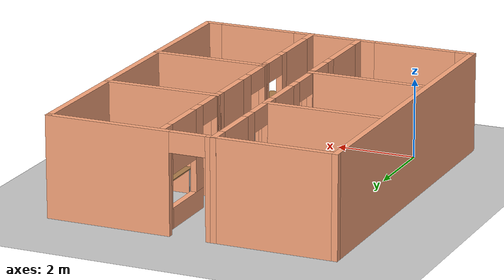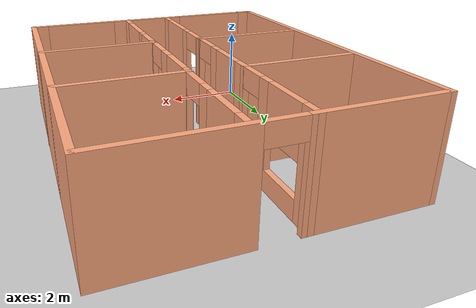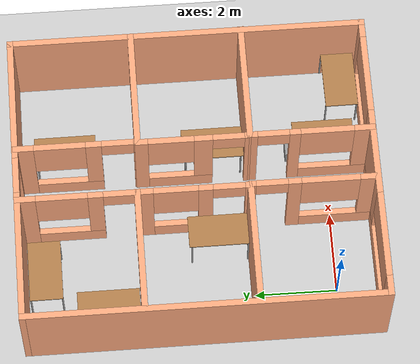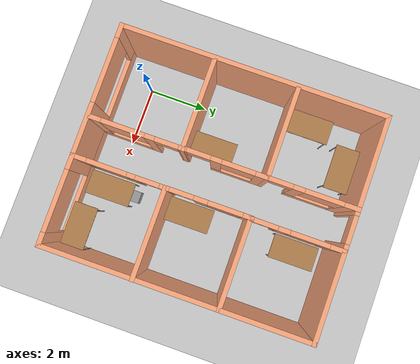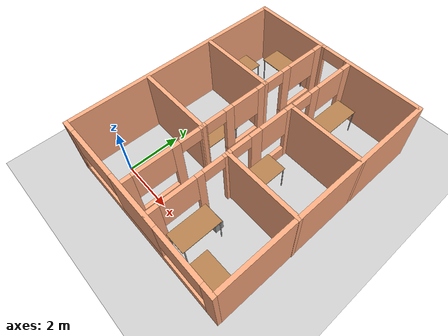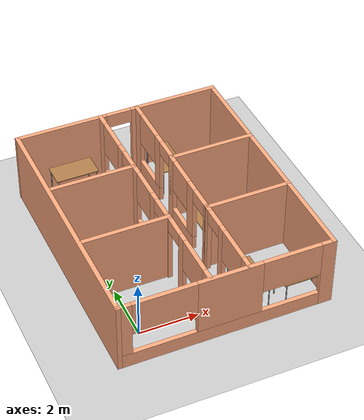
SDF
<sdf version="1.7">
 <world name="default">
  <light name="sun" type="directional">
   <pose>0 0 10 0 -0 0</pose>
   <diffuse>0.8 0.8 0.8 1</diffuse>
   <specular>0.2 0.2 0.2 1</specular>
   <attenuation>
    <range>1000</range>
    <constant>0.9</constant>
    <linear>0.01</linear>
    <quadratic>0.001</quadratic>
   </attenuation>
   <direction>-0.5 0.1 -0.9</direction>
   <spot><inner_angle>0</inner_angle><outer_angle>0</outer_angle><falloff>0</falloff></spot>
  </light>
  <model name="ground_plane">
   <static>1</static>
   <link name="link">
    <collision name="collision">
     <geometry><plane><normal>0 0 1</normal><size>100 100</size></plane></geometry>
     <surface><friction><ode><mu>100</mu><mu2>50</mu2></ode></friction></surface>
    </collision>
    <visual name="visual">
     <cast_shadows>0</cast_shadows>
     <geometry><plane><normal>0 0 1</normal><size>100 100</size></plane></geometry>
     <material>
      <script><uri>file://media/materials/scripts/gazebo.material</uri><name>Gazebo/Grey</name></script>
     </material>
    </visual>
   </link>
  </model>
  <gravity>0 0 -9.8</gravity>
  <magnetic_field>6e-06 2.3e-05 -4.2e-05</magnetic_field>
  <atmosphere type="adiabatic"/>
  <physics type="ode">
   <max_step_size>0.001</max_step_size>
   <real_time_factor>1</real_time_factor>
   <real_time_update_rate>1000</real_time_update_rate>
  </physics>
  <scene><ambient>0.4 0.4 0.4 1</ambient><background>0.7 0.7 0.7 1</background><shadows>1</shadows></scene>
  <audio><device>default</device></audio>
  <spherical_coordinates>
   <surface_model>EARTH_WGS84</surface_model>
   <latitude_deg>0</latitude_deg>
   <longitude_deg>0</longitude_deg>
   <elevation>0</elevation>
   <heading_deg>0</heading_deg>
  </spherical_coordinates>
  <model name="map_50703">
   <pose>2.46963 3.26949 0 0 0 -1.56915</pose>
   <link name="Wall_12">
    <collision name="Wall_12_Collision">
     <geometry><box><size>8.75 0.15 2.5</size></box></geometry>
     <pose>0 0 1.25 0 -0 0</pose>
    </collision>
    <visual name="Wall_12_Visual">
     <pose>0 0 1.25 0 -0 0</pose>
     <geometry><box><size>8.75 0.15 2.5</size></box></geometry>
     <material>
      <script><uri>file://media/materials/scripts/gazebo.material</uri><name>Gazebo/Grey</name></script>
      <ambient>1 0.666667 0.498039 1</ambient>
     </material>
     <meta><layer>0</layer></meta>
    </visual>
    <pose>0.000429 3.54473 0 0 -0 0</pose>
   </link>
   <link name="Wall_14">
    <pose>4.30043 -0.00527 0 0 -0 -1.5708</pose>
    <visual name="Wall_14_Visual_0">
     <pose>-3.38322 0 1.25 0 -0 0</pose>
     <geometry><box><size>0.483567 0.15 2.5</size></box></geometry>
     <material>
      <script><uri>file://media/materials/scripts/gazebo.material</uri><name>Gazebo/Grey</name></script>
      <ambient>1 0.666667 0.498039 1</ambient>
     </material>
     <meta><layer>0</layer></meta>
    </visual>
    <collision name="Wall_14_Collision_0">
     <geometry><box><size>0.483567 0.15 2.5</size></box></geometry>
     <pose>-3.38322 0 1.25 0 -0 0</pose>
    </collision>
    <visual name="Wall_14_Visual_1">
     <pose>0.241783 0 0.25 0 -0 0</pose>
     <geometry><box><size>6.76643 0.15 0.5</size></box></geometry>
     <material>
      <script><uri>file://media/materials/scripts/gazebo.material</uri><name>Gazebo/Grey</name></script>
      <ambient>1 0.666667 0.498039 1</ambient>
     </material>
     <meta><layer>0</layer></meta>
    </visual>
    <collision name="Wall_14_Collision_1">
     <geometry><box><size>6.76643 0.15 0.5</size></box></geometry>
     <pose>0.241783 0 0.25 0 -0 0</pose>
    </collision>
    <visual name="Wall_14_Visual_2">
     <pose>-0.076209 0 1.5 0 -0 0</pose>
     <geometry><box><size>2.16534 0.15 2</size></box></geometry>
     <material>
      <script><uri>file://media/materials/scripts/gazebo.material</uri><name>Gazebo/Grey</name></script>
      <ambient>1 0.666667 0.498039 1</ambient>
     </material>
     <meta><layer>0</layer></meta>
    </visual>
    <collision name="Wall_14_Collision_2">
     <geometry><box><size>2.16534 0.15 2</size></box></geometry>
     <pose>-0.076209 0 1.5 0 -0 0</pose>
    </collision>
    <visual name="Wall_14_Visual_3">
     <pose>3.37611 0 1.5 0 -0 0</pose>
     <geometry><box><size>0.49778 0.15 2</size></box></geometry>
     <material>
      <script><uri>file://media/materials/scripts/gazebo.material</uri><name>Gazebo/Grey</name></script>
      <ambient>1 0.666667 0.498039 1</ambient>
     </material>
     <meta><layer>0</layer></meta>
    </visual>
    <collision name="Wall_14_Collision_3">
     <geometry><box><size>0.49778 0.15 2</size></box></geometry>
     <pose>3.37611 0 1.5 0 -0 0</pose>
    </collision>
    <visual name="Wall_14_Visual_4">
     <pose>-2.15016 0 1.9 0 -0 0</pose>
     <geometry><box><size>1.98255 0.15 1.2</size></box></geometry>
     <material>
      <script><uri>file://media/materials/scripts/gazebo.material</uri><name>Gazebo/Grey</name></script>
      <ambient>1 0.666667 0.498039 1</ambient>
     </material>
     <meta><layer>0</layer></meta>
    </visual>
    <collision name="Wall_14_Collision_4">
     <geometry><box><size>1.98255 0.15 1.2</size></box></geometry>
     <pose>-2.15016 0 1.9 0 -0 0</pose>
    </collision>
    <visual name="Wall_14_Visual_5">
     <pose>2.06684 0 1.9 0 -0 0</pose>
     <geometry><box><size>2.12076 0.15 1.2</size></box></geometry>
     <material>
      <script><uri>file://media/materials/scripts/gazebo.material</uri><name>Gazebo/Grey</name></script>
      <ambient>1 0.666667 0.498039 1</ambient>
     </material>
     <meta><layer>0</layer></meta>
    </visual>
    <collision name="Wall_14_Collision_5">
     <geometry><box><size>2.12076 0.15 1.2</size></box></geometry>
     <pose>2.06684 0 1.9 0 -0 0</pose>
    </collision>
   </link>
   <link name="Wall_16">
    <collision name="Wall_16_Collision">
     <geometry><box><size>8.75 0.15 2.5</size></box></geometry>
     <pose>0 0 1.25 0 -0 0</pose>
    </collision>
    <visual name="Wall_16_Visual">
     <pose>0 0 1.25 0 -0 0</pose>
     <geometry><box><size>8.75 0.15 2.5</size></box></geometry>
     <material>
      <script><uri>file://media/materials/scripts/gazebo.material</uri><name>Gazebo/Grey</name></script>
      <ambient>1 0.666667 0.498039 1</ambient>
     </material>
     <meta><layer>0</layer></meta>
    </visual>
    <pose>0.000429 -3.55527 0 0 -0 3.14159</pose>
   </link>
   <link name="Wall_17">
    <pose>-4.29957 -0.00527 0 0 -0 1.5708</pose>
    <visual name="Wall_17_Visual_0">
     <pose>-2.01405 0 1.25 0 -0 0</pose>
     <geometry><box><size>3.22191 0.15 2.5</size></box></geometry>
     <material>
      <script><uri>file://media/materials/scripts/gazebo.material</uri><name>Gazebo/Grey</name></script>
      <ambient>1 0.666667 0.498039 1</ambient>
     </material>
     <meta><layer>0</layer></meta>
    </visual>
    <collision name="Wall_17_Collision_0">
     <geometry><box><size>3.22191 0.15 2.5</size></box></geometry>
     <pose>-2.01405 0 1.25 0 -0 0</pose>
    </collision>
    <visual name="Wall_17_Visual_1">
     <pose>2.06095 0 1.25 0 -0 0</pose>
     <geometry><box><size>3.12809 0.15 2.5</size></box></geometry>
     <material>
      <script><uri>file://media/materials/scripts/gazebo.material</uri><name>Gazebo/Grey</name></script>
      <ambient>1 0.666667 0.498039 1</ambient>
     </material>
     <meta><layer>0</layer></meta>
    </visual>
    <collision name="Wall_17_Collision_1">
     <geometry><box><size>3.12809 0.15 2.5</size></box></geometry>
     <pose>2.06095 0 1.25 0 -0 0</pose>
    </collision>
    <visual name="Wall_17_Visual_2">
     <pose>0.046906 0 2.25 0 -0 0</pose>
     <geometry><box><size>0.9 0.15 0.5</size></box></geometry>
     <material>
      <script><uri>file://media/materials/scripts/gazebo.material</uri><name>Gazebo/Grey</name></script>
      <ambient>1 0.666667 0.498039 1</ambient>
     </material>
     <meta><layer>0</layer></meta>
    </visual>
    <collision name="Wall_17_Collision_2">
     <geometry><box><size>0.9 0.15 0.5</size></box></geometry>
     <pose>0.046906 0 2.25 0 -0 0</pose>
    </collision>
   </link>
   <link name="Wall_27">
    <collision name="Wall_27_Collision">
     <geometry><box><size>3 0.15 2.5</size></box></geometry>
     <pose>0 0 1.25 0 -0 0</pose>
    </collision>
    <visual name="Wall_27_Visual">
     <pose>0 0 1.25 0 -0 0</pose>
     <geometry><box><size>3 0.15 2.5</size></box></geometry>
     <material>
      <script><uri>file://media/materials/scripts/gazebo.material</uri><name>Gazebo/Grey</name></script>
      <ambient>1 0.666667 0.498039 1</ambient>
     </material>
     <meta><layer>0</layer></meta>
    </visual>
    <pose>-1.35854 2.12027 0 0 -0 -1.5708</pose>
   </link>
   <link name="Wall_28">
    <pose>-0.058544 0.69527 0 0 -0 0</pose>
    <visual name="Wall_28_Visual_0">
     <pose>-1.21382 0 1.25 0 -0 0</pose>
     <geometry><box><size>0.322353 0.15 2.5</size></box></geometry>
     <material>
      <script><uri>file://media/materials/scripts/gazebo.material</uri><name>Gazebo/Grey</name></script>
      <ambient>1 0.666667 0.498039 1</ambient>
     </material>
     <meta><layer>0</layer></meta>
    </visual>
    <collision name="Wall_28_Collision_0">
     <geometry><box><size>0.322353 0.15 2.5</size></box></geometry>
     <pose>-1.21382 0 1.25 0 -0 0</pose>
    </collision>
    <visual name="Wall_28_Visual_1">
     <pose>1.32495 0 1.25 0 -0 0</pose>
     <geometry><box><size>0.100106 0.15 2.5</size></box></geometry>
     <material>
      <script><uri>file://media/materials/scripts/gazebo.material</uri><name>Gazebo/Grey</name></script>
      <ambient>1 0.666667 0.498039 1</ambient>
     </material>
     <meta><layer>0</layer></meta>
    </visual>
    <collision name="Wall_28_Collision_1">
     <geometry><box><size>0.100106 0.15 2.5</size></box></geometry>
     <pose>1.32495 0 1.25 0 -0 0</pose>
    </collision>
    <visual name="Wall_28_Visual_2">
     <pose>-0.273877 0 0.25 0 -0 0</pose>
     <geometry><box><size>1.55754 0.15 0.5</size></box></geometry>
     <material>
      <script><uri>file://media/materials/scripts/gazebo.material</uri><name>Gazebo/Grey</name></script>
      <ambient>1 0.666667 0.498039 1</ambient>
     </material>
     <meta><layer>0</layer></meta>
    </visual>
    <collision name="Wall_28_Collision_2">
     <geometry><box><size>1.55754 0.15 0.5</size></box></geometry>
     <pose>-0.273877 0 0.25 0 -0 0</pose>
    </collision>
    <visual name="Wall_28_Visual_3">
     <pose>0.280863 0 1.5 0 -0 0</pose>
     <geometry><box><size>0.448061 0.15 2</size></box></geometry>
     <material>
      <script><uri>file://media/materials/scripts/gazebo.material</uri><name>Gazebo/Grey</name></script>
      <ambient>1 0.666667 0.498039 1</ambient>
     </material>
     <meta><layer>0</layer></meta>
    </visual>
    <collision name="Wall_28_Collision_3">
     <geometry><box><size>0.448061 0.15 2</size></box></geometry>
     <pose>0.280863 0 1.5 0 -0 0</pose>
    </collision>
    <visual name="Wall_28_Visual_4">
     <pose>-0.497907 0 1.9 0 -0 0</pose>
     <geometry><box><size>1.10948 0.15 1.2</size></box></geometry>
     <material>
      <script><uri>file://media/materials/scripts/gazebo.material</uri><name>Gazebo/Grey</name></script>
      <ambient>1 0.666667 0.498039 1</ambient>
     </material>
     <meta><layer>0</layer></meta>
    </visual>
    <collision name="Wall_28_Collision_4">
     <geometry><box><size>1.10948 0.15 1.2</size></box></geometry>
     <pose>-0.497907 0 1.9 0 -0 0</pose>
    </collision>
    <visual name="Wall_28_Visual_5">
     <pose>0.889894 0 2.25 0 -0 0</pose>
     <geometry><box><size>0.77 0.15 0.5</size></box></geometry>
     <material>
      <script><uri>file://media/materials/scripts/gazebo.material</uri><name>Gazebo/Grey</name></script>
      <ambient>1 0.666667 0.498039 1</ambient>
     </material>
     <meta><layer>0</layer></meta>
    </visual>
    <collision name="Wall_28_Collision_5">
     <geometry><box><size>0.77 0.15 0.5</size></box></geometry>
     <pose>0.889894 0 2.25 0 -0 0</pose>
    </collision>
   </link>
   <link name="Wall_33">
    <collision name="Wall_33_Collision">
     <geometry><box><size>3 0.15 2.5</size></box></geometry>
     <pose>0 0 1.25 0 -0 0</pose>
    </collision>
    <visual name="Wall_33_Visual">
     <pose>0 0 1.25 0 -0 0</pose>
     <geometry><box><size>3 0.15 2.5</size></box></geometry>
     <material>
      <script><uri>file://media/materials/scripts/gazebo.material</uri><name>Gazebo/Grey</name></script>
      <ambient>1 0.666667 0.498039 1</ambient>
     </material>
     <meta><layer>0</layer></meta>
    </visual>
    <pose>-1.44248 -2.02407 0 0 -0 -1.5708</pose>
   </link>
   <link name="Wall_35">
    <pose>-0.14248 -0.599073 0 0 -0 0</pose>
    <visual name="Wall_35_Visual_0">
     <pose>-1.14883 0 1.25 0 -0 0</pose>
     <geometry><box><size>0.452336 0.15 2.5</size></box></geometry>
     <material>
      <script><uri>file://media/materials/scripts/gazebo.material</uri><name>Gazebo/Grey</name></script>
      <ambient>1 0.666667 0.498039 1</ambient>
     </material>
     <meta><layer>0</layer></meta>
    </visual>
    <collision name="Wall_35_Collision_0">
     <geometry><box><size>0.452336 0.15 2.5</size></box></geometry>
     <pose>-1.14883 0 1.25 0 -0 0</pose>
    </collision>
    <visual name="Wall_35_Visual_1">
     <pose>1.32379 0 1.25 0 -0 0</pose>
     <geometry><box><size>0.102421 0.15 2.5</size></box></geometry>
     <material>
      <script><uri>file://media/materials/scripts/gazebo.material</uri><name>Gazebo/Grey</name></script>
      <ambient>1 0.666667 0.498039 1</ambient>
     </material>
     <meta><layer>0</layer></meta>
    </visual>
    <collision name="Wall_35_Collision_1">
     <geometry><box><size>0.102421 0.15 2.5</size></box></geometry>
     <pose>1.32379 0 1.25 0 -0 0</pose>
    </collision>
    <visual name="Wall_35_Visual_2">
     <pose>-0.210042 0 0.25 0 -0 0</pose>
     <geometry><box><size>1.42524 0.15 0.5</size></box></geometry>
     <material>
      <script><uri>file://media/materials/scripts/gazebo.material</uri><name>Gazebo/Grey</name></script>
      <ambient>1 0.666667 0.498039 1</ambient>
     </material>
     <meta><layer>0</layer></meta>
    </visual>
    <collision name="Wall_35_Collision_2">
     <geometry><box><size>1.42524 0.15 0.5</size></box></geometry>
     <pose>-0.210042 0 0.25 0 -0 0</pose>
    </collision>
    <visual name="Wall_35_Visual_3">
     <pose>0.32915 0 1.5 0 -0 0</pose>
     <geometry><box><size>0.346859 0.15 2</size></box></geometry>
     <material>
      <script><uri>file://media/materials/scripts/gazebo.material</uri><name>Gazebo/Grey</name></script>
      <ambient>1 0.666667 0.498039 1</ambient>
     </material>
     <meta><layer>0</layer></meta>
    </visual>
    <collision name="Wall_35_Collision_3">
     <geometry><box><size>0.346859 0.15 2</size></box></geometry>
     <pose>0.32915 0 1.5 0 -0 0</pose>
    </collision>
    <visual name="Wall_35_Visual_4">
     <pose>-0.383472 0 1.9 0 -0 0</pose>
     <geometry><box><size>1.07838 0.15 1.2</size></box></geometry>
     <material>
      <script><uri>file://media/materials/scripts/gazebo.material</uri><name>Gazebo/Grey</name></script>
      <ambient>1 0.666667 0.498039 1</ambient>
     </material>
     <meta><layer>0</layer></meta>
    </visual>
    <collision name="Wall_35_Collision_4">
     <geometry><box><size>1.07838 0.15 1.2</size></box></geometry>
     <pose>-0.383472 0 1.9 0 -0 0</pose>
    </collision>
    <visual name="Wall_35_Visual_5">
     <pose>0.887579 0 2.25 0 -0 0</pose>
     <geometry><box><size>0.77 0.15 0.5</size></box></geometry>
     <material>
      <script><uri>file://media/materials/scripts/gazebo.material</uri><name>Gazebo/Grey</name></script>
      <ambient>1 0.666667 0.498039 1</ambient>
     </material>
     <meta><layer>0</layer></meta>
    </visual>
    <collision name="Wall_35_Collision_5">
     <geometry><box><size>0.77 0.15 0.5</size></box></geometry>
     <pose>0.887579 0 2.25 0 -0 0</pose>
    </collision>
   </link>
   <link name="Wall_41">
    <pose>-2.87543 -0.604096 0 0 -0 0</pose>
    <visual name="Wall_41_Visual_0">
     <pose>-1.24449 0 1.25 0 -0 0</pose>
     <geometry><box><size>0.511019 0.15 2.5</size></box></geometry>
     <material>
      <script><uri>file://media/materials/scripts/gazebo.material</uri><name>Gazebo/Grey</name></script>
      <ambient>1 0.666667 0.498039 1</ambient>
     </material>
     <meta><layer>0</layer></meta>
    </visual>
    <collision name="Wall_41_Collision_0">
     <geometry><box><size>0.511019 0.15 2.5</size></box></geometry>
     <pose>-1.24449 0 1.25 0 -0 0</pose>
    </collision>
    <visual name="Wall_41_Visual_1">
     <pose>1.44464 0 1.25 0 -0 0</pose>
     <geometry><box><size>0.110721 0.15 2.5</size></box></geometry>
     <material>
      <script><uri>file://media/materials/scripts/gazebo.material</uri><name>Gazebo/Grey</name></script>
      <ambient>1 0.666667 0.498039 1</ambient>
     </material>
     <meta><layer>0</layer></meta>
    </visual>
    <collision name="Wall_41_Collision_1">
     <geometry><box><size>0.110721 0.15 2.5</size></box></geometry>
     <pose>1.44464 0 1.25 0 -0 0</pose>
    </collision>
    <visual name="Wall_41_Visual_2">
     <pose>-0.184851 0 0.25 0 -0 0</pose>
     <geometry><box><size>1.60826 0.15 0.5</size></box></geometry>
     <material>
      <script><uri>file://media/materials/scripts/gazebo.material</uri><name>Gazebo/Grey</name></script>
      <ambient>1 0.666667 0.498039 1</ambient>
     </material>
     <meta><layer>0</layer></meta>
    </visual>
    <collision name="Wall_41_Collision_2">
     <geometry><box><size>1.60826 0.15 0.5</size></box></geometry>
     <pose>-0.184851 0 0.25 0 -0 0</pose>
    </collision>
    <visual name="Wall_41_Visual_3">
     <pose>0.435017 0 1.5 0 -0 0</pose>
     <geometry><box><size>0.368524 0.15 2</size></box></geometry>
     <material>
      <script><uri>file://media/materials/scripts/gazebo.material</uri><name>Gazebo/Grey</name></script>
      <ambient>1 0.666667 0.498039 1</ambient>
     </material>
     <meta><layer>0</layer></meta>
    </visual>
    <collision name="Wall_41_Collision_3">
     <geometry><box><size>0.368524 0.15 2</size></box></geometry>
     <pose>0.435017 0 1.5 0 -0 0</pose>
    </collision>
    <visual name="Wall_41_Visual_4">
     <pose>-0.369113 0 1.9 0 -0 0</pose>
     <geometry><box><size>1.23974 0.15 1.2</size></box></geometry>
     <material>
      <script><uri>file://media/materials/scripts/gazebo.material</uri><name>Gazebo/Grey</name></script>
      <ambient>1 0.666667 0.498039 1</ambient>
     </material>
     <meta><layer>0</layer></meta>
    </visual>
    <collision name="Wall_41_Collision_4">
     <geometry><box><size>1.23974 0.15 1.2</size></box></geometry>
     <pose>-0.369113 0 1.9 0 -0 0</pose>
    </collision>
    <visual name="Wall_41_Visual_5">
     <pose>1.00428 0 2.25 0 -0 0</pose>
     <geometry><box><size>0.77 0.15 0.5</size></box></geometry>
     <material>
      <script><uri>file://media/materials/scripts/gazebo.material</uri><name>Gazebo/Grey</name></script>
      <ambient>1 0.666667 0.498039 1</ambient>
     </material>
     <meta><layer>0</layer></meta>
    </visual>
    <collision name="Wall_41_Collision_5">
     <geometry><box><size>0.77 0.15 0.5</size></box></geometry>
     <pose>1.00428 0 2.25 0 -0 0</pose>
    </collision>
   </link>
   <link name="Wall_47">
    <pose>-2.85654 0.716045 0 0 -0 0</pose>
    <visual name="Wall_47_Visual_0">
     <pose>-1.24653 0 1.25 0 -0 0</pose>
     <geometry><box><size>0.506939 0.15 2.5</size></box></geometry>
     <material>
      <script><uri>file://media/materials/scripts/gazebo.material</uri><name>Gazebo/Grey</name></script>
      <ambient>1 0.666667 0.498039 1</ambient>
     </material>
     <meta><layer>0</layer></meta>
    </visual>
    <collision name="Wall_47_Collision_0">
     <geometry><box><size>0.506939 0.15 2.5</size></box></geometry>
     <pose>-1.24653 0 1.25 0 -0 0</pose>
    </collision>
    <visual name="Wall_47_Visual_1">
     <pose>1.44957 0 1.25 0 -0 0</pose>
     <geometry><box><size>0.100856 0.15 2.5</size></box></geometry>
     <material>
      <script><uri>file://media/materials/scripts/gazebo.material</uri><name>Gazebo/Grey</name></script>
      <ambient>1 0.666667 0.498039 1</ambient>
     </material>
     <meta><layer>0</layer></meta>
    </visual>
    <collision name="Wall_47_Collision_1">
     <geometry><box><size>0.100856 0.15 2.5</size></box></geometry>
     <pose>1.44957 0 1.25 0 -0 0</pose>
    </collision>
    <visual name="Wall_47_Visual_2">
     <pose>-0.181958 0 0.25 0 -0 0</pose>
     <geometry><box><size>1.6222 0.15 0.5</size></box></geometry>
     <material>
      <script><uri>file://media/materials/scripts/gazebo.material</uri><name>Gazebo/Grey</name></script>
      <ambient>1 0.666667 0.498039 1</ambient>
     </material>
     <meta><layer>0</layer></meta>
    </visual>
    <collision name="Wall_47_Collision_2">
     <geometry><box><size>1.6222 0.15 0.5</size></box></geometry>
     <pose>-0.181958 0 0.25 0 -0 0</pose>
    </collision>
    <visual name="Wall_47_Visual_3">
     <pose>0.438027 0 1.5 0 -0 0</pose>
     <geometry><box><size>0.382234 0.15 2</size></box></geometry>
     <material>
      <script><uri>file://media/materials/scripts/gazebo.material</uri><name>Gazebo/Grey</name></script>
      <ambient>1 0.666667 0.498039 1</ambient>
     </material>
     <meta><layer>0</layer></meta>
    </visual>
    <collision name="Wall_47_Collision_3">
     <geometry><box><size>0.382234 0.15 2</size></box></geometry>
     <pose>0.438027 0 1.5 0 -0 0</pose>
    </collision>
    <visual name="Wall_47_Visual_4">
     <pose>-0.373075 0 1.9 0 -0 0</pose>
     <geometry><box><size>1.23997 0.15 1.2</size></box></geometry>
     <material>
      <script><uri>file://media/materials/scripts/gazebo.material</uri><name>Gazebo/Grey</name></script>
      <ambient>1 0.666667 0.498039 1</ambient>
     </material>
     <meta><layer>0</layer></meta>
    </visual>
    <collision name="Wall_47_Collision_4">
     <geometry><box><size>1.23997 0.15 1.2</size></box></geometry>
     <pose>-0.373075 0 1.9 0 -0 0</pose>
    </collision>
    <visual name="Wall_47_Visual_5">
     <pose>1.01414 0 2.25 0 -0 0</pose>
     <geometry><box><size>0.77 0.15 0.5</size></box></geometry>
     <material>
      <script><uri>file://media/materials/scripts/gazebo.material</uri><name>Gazebo/Grey</name></script>
      <ambient>1 0.666667 0.498039 1</ambient>
     </material>
     <meta><layer>0</layer></meta>
    </visual>
    <collision name="Wall_47_Collision_5">
     <geometry><box><size>0.77 0.15 0.5</size></box></geometry>
     <pose>1.01414 0 2.25 0 -0 0</pose>
    </collision>
   </link>
   <link name="Wall_55">
    <collision name="Wall_55_Collision">
     <geometry><box><size>3 0.15 2.5</size></box></geometry>
     <pose>0 0 1.25 0 -0 0</pose>
    </collision>
    <visual name="Wall_55_Visual">
     <pose>0 0 1.25 0 -0 0</pose>
     <geometry><box><size>3 0.15 2.5</size></box></geometry>
     <material>
      <script><uri>file://media/materials/scripts/gazebo.material</uri><name>Gazebo/Grey</name></script>
      <ambient>1 0.666667 0.498039 1</ambient>
     </material>
     <meta><layer>0</layer></meta>
    </visual>
    <pose>1.34146 2.13027 0 0 -0 1.5708</pose>
   </link>
   <link name="Wall_59">
    <collision name="Wall_59_Collision">
     <geometry><box><size>3.02 0.15 2.5</size></box></geometry>
     <pose>0 0 1.25 0 -0 0</pose>
    </collision>
    <visual name="Wall_59_Visual">
     <pose>0 0 1.25 0 -0 0</pose>
     <geometry><box><size>3.02 0.15 2.5</size></box></geometry>
     <material>
      <script><uri>file://media/materials/scripts/gazebo.material</uri><name>Gazebo/Grey</name></script>
      <ambient>1 0.666667 0.498039 1</ambient>
     </material>
     <meta><layer>0</layer></meta>
    </visual>
    <pose>1.25752 -2.01407 0 0 -0 -1.5708</pose>
   </link>
   <link name="Wall_62">
    <pose>2.86646 0.70527 0 0 -0 0</pose>
    <visual name="Wall_62_Visual_0">
     <pose>-1.4195 0 1.25 0 -0 0</pose>
     <geometry><box><size>0.161003 0.15 2.5</size></box></geometry>
     <material>
      <script><uri>file://media/materials/scripts/gazebo.material</uri><name>Gazebo/Grey</name></script>
      <ambient>1 0.666667 0.498039 1</ambient>
     </material>
     <meta><layer>0</layer></meta>
    </visual>
    <collision name="Wall_62_Collision_0">
     <geometry><box><size>0.161003 0.15 2.5</size></box></geometry>
     <pose>-1.4195 0 1.25 0 -0 0</pose>
    </collision>
    <visual name="Wall_62_Visual_1">
     <pose>-0.434863 0 1.25 0 -0 0</pose>
     <geometry><box><size>0.268267 0.15 2.5</size></box></geometry>
     <material>
      <script><uri>file://media/materials/scripts/gazebo.material</uri><name>Gazebo/Grey</name></script>
      <ambient>1 0.666667 0.498039 1</ambient>
     </material>
     <meta><layer>0</layer></meta>
    </visual>
    <collision name="Wall_62_Collision_1">
     <geometry><box><size>0.268267 0.15 2.5</size></box></geometry>
     <pose>-0.434863 0 1.25 0 -0 0</pose>
    </collision>
    <visual name="Wall_62_Visual_2">
     <pose>0.599635 0 0.25 0 -0 0</pose>
     <geometry><box><size>1.80073 0.15 0.5</size></box></geometry>
     <material>
      <script><uri>file://media/materials/scripts/gazebo.material</uri><name>Gazebo/Grey</name></script>
      <ambient>1 0.666667 0.498039 1</ambient>
     </material>
     <meta><layer>0</layer></meta>
    </visual>
    <collision name="Wall_62_Collision_2">
     <geometry><box><size>1.80073 0.15 0.5</size></box></geometry>
     <pose>0.599635 0 0.25 0 -0 0</pose>
    </collision>
    <visual name="Wall_62_Visual_3">
     <pose>1.24555 0 1.5 0 -0 0</pose>
     <geometry><box><size>0.508892 0.15 2</size></box></geometry>
     <material>
      <script><uri>file://media/materials/scripts/gazebo.material</uri><name>Gazebo/Grey</name></script>
      <ambient>1 0.666667 0.498039 1</ambient>
     </material>
     <meta><layer>0</layer></meta>
    </visual>
    <collision name="Wall_62_Collision_3">
     <geometry><box><size>0.508892 0.15 2</size></box></geometry>
     <pose>1.24555 0 1.5 0 -0 0</pose>
    </collision>
    <visual name="Wall_62_Visual_4">
     <pose>0.345189 0 1.9 0 -0 0</pose>
     <geometry><box><size>1.29184 0.15 1.2</size></box></geometry>
     <material>
      <script><uri>file://media/materials/scripts/gazebo.material</uri><name>Gazebo/Grey</name></script>
      <ambient>1 0.666667 0.498039 1</ambient>
     </material>
     <meta><layer>0</layer></meta>
    </visual>
    <collision name="Wall_62_Collision_4">
     <geometry><box><size>1.29184 0.15 1.2</size></box></geometry>
     <pose>0.345189 0 1.9 0 -0 0</pose>
    </collision>
    <visual name="Wall_62_Visual_5">
     <pose>-0.953997 0 2.25 0 -0 0</pose>
     <geometry><box><size>0.77 0.15 0.5</size></box></geometry>
     <material>
      <script><uri>file://media/materials/scripts/gazebo.material</uri><name>Gazebo/Grey</name></script>
      <ambient>1 0.666667 0.498039 1</ambient>
     </material>
     <meta><layer>0</layer></meta>
    </visual>
    <collision name="Wall_62_Collision_5">
     <geometry><box><size>0.77 0.15 0.5</size></box></geometry>
     <pose>-0.953997 0 2.25 0 -0 0</pose>
    </collision>
   </link>
   <link name="Wall_68">
    <pose>2.78252 -0.579073 0 0 -0 0</pose>
    <visual name="Wall_68_Visual_0">
     <pose>-1.44946 0 1.25 0 -0 0</pose>
     <geometry><box><size>0.101079 0.15 2.5</size></box></geometry>
     <material>
      <script><uri>file://media/materials/scripts/gazebo.material</uri><name>Gazebo/Grey</name></script>
      <ambient>1 0.666667 0.498039 1</ambient>
     </material>
     <meta><layer>0</layer></meta>
    </visual>
    <collision name="Wall_68_Collision_0">
     <geometry><box><size>0.101079 0.15 2.5</size></box></geometry>
     <pose>-1.44946 0 1.25 0 -0 0</pose>
    </collision>
    <visual name="Wall_68_Visual_1">
     <pose>-0.469924 0 1.25 0 -0 0</pose>
     <geometry><box><size>0.317994 0.15 2.5</size></box></geometry>
     <material>
      <script><uri>file://media/materials/scripts/gazebo.material</uri><name>Gazebo/Grey</name></script>
      <ambient>1 0.666667 0.498039 1</ambient>
     </material>
     <meta><layer>0</layer></meta>
    </visual>
    <collision name="Wall_68_Collision_1">
     <geometry><box><size>0.317994 0.15 2.5</size></box></geometry>
     <pose>-0.469924 0 1.25 0 -0 0</pose>
    </collision>
    <visual name="Wall_68_Visual_2">
     <pose>0.594537 0 0.25 0 -0 0</pose>
     <geometry><box><size>1.81093 0.15 0.5</size></box></geometry>
     <material>
      <script><uri>file://media/materials/scripts/gazebo.material</uri><name>Gazebo/Grey</name></script>
      <ambient>1 0.666667 0.498039 1</ambient>
     </material>
     <meta><layer>0</layer></meta>
    </visual>
    <collision name="Wall_68_Collision_2">
     <geometry><box><size>1.81093 0.15 0.5</size></box></geometry>
     <pose>0.594537 0 0.25 0 -0 0</pose>
    </collision>
    <visual name="Wall_68_Visual_3">
     <pose>1.29583 0 1.5 0 -0 0</pose>
     <geometry><box><size>0.408346 0.15 2</size></box></geometry>
     <material>
      <script><uri>file://media/materials/scripts/gazebo.material</uri><name>Gazebo/Grey</name></script>
      <ambient>1 0.666667 0.498039 1</ambient>
     </material>
     <meta><layer>0</layer></meta>
    </visual>
    <collision name="Wall_68_Collision_3">
     <geometry><box><size>0.408346 0.15 2</size></box></geometry>
     <pose>1.29583 0 1.5 0 -0 0</pose>
    </collision>
    <visual name="Wall_68_Visual_4">
     <pose>0.390363 0 1.9 0 -0 0</pose>
     <geometry><box><size>1.40258 0.15 1.2</size></box></geometry>
     <material>
      <script><uri>file://media/materials/scripts/gazebo.material</uri><name>Gazebo/Grey</name></script>
      <ambient>1 0.666667 0.498039 1</ambient>
     </material>
     <meta><layer>0</layer></meta>
    </visual>
    <collision name="Wall_68_Collision_4">
     <geometry><box><size>1.40258 0.15 1.2</size></box></geometry>
     <pose>0.390363 0 1.9 0 -0 0</pose>
    </collision>
    <visual name="Wall_68_Visual_5">
     <pose>-1.01392 0 2.25 0 -0 0</pose>
     <geometry><box><size>0.77 0.15 0.5</size></box></geometry>
     <material>
      <script><uri>file://media/materials/scripts/gazebo.material</uri><name>Gazebo/Grey</name></script>
      <ambient>1 0.666667 0.498039 1</ambient>
     </material>
     <meta><layer>0</layer></meta>
    </visual>
    <collision name="Wall_68_Collision_5">
     <geometry><box><size>0.77 0.15 0.5</size></box></geometry>
     <pose>-1.01392 0 2.25 0 -0 0</pose>
    </collision>
   </link>
   <static>1</static>
  </model>
  <model name="map_50703_table">
   <link name="link_0">
    <inertial>
     <mass>0.0495577</mass>
     <inertia>
      <ixx>0.00131557</ixx>
      <ixy>0</ixy>
      <ixz>0</ixz>
      <iyy>0.00109854</iyy>
      <iyz>0</iyz>
      <izz>0.00102142</izz>
     </inertia>
    </inertial>
    <pose>-1.71941 -0.734293 0.186114 0 -0 0</pose>
    <visual name="visual">
     <geometry><box><size>0.312071 0.387221 0.410627</size></box></geometry>
     <material>
      <lighting>1</lighting>
      <script><uri>file://media/materials/scripts/gazebo.material</uri><name>Gazebo/Grey</name></script>
      <shader type="pixel"/>
     </material>
    </visual>
    <collision name="collision">
     <geometry><box><size>0.312071 0.387221 0.410627</size></box></geometry>
     <surface>
      <friction>
       <ode><mu>1</mu><mu2>1</mu2><fdir1>0 0 0</fdir1><slip1>0</slip1><slip2>0</slip2></ode>
       <torsional>
        <coefficient>1</coefficient>
        <patch_radius>0</patch_radius>
        <surface_radius>0</surface_radius>
        <use_patch_radius>1</use_patch_radius>
        <ode><slip>0</slip></ode>
       </torsional>
      </friction>
      <bounce><restitution_coefficient>0</restitution_coefficient><threshold>1e+06</threshold></bounce>
      <contact>
       <collide_without_contact>0</collide_without_contact>
       <collide_without_contact_bitmask>1</collide_without_contact_bitmask>
       <collide_bitmask>1</collide_bitmask>
       <ode>
        <soft_cfm>0</soft_cfm>
        <soft_erp>0.2</soft_erp>
        <kp>1e+13</kp>
        <kd>1</kd>
        <max_vel>0.01</max_vel>
        <min_depth>0</min_depth>
       </ode>
       <bullet>
        <split_impulse>1</split_impulse>
        <split_impulse_penetration_threshold>-0.01</split_impulse_penetration_threshold>
        <soft_cfm>0</soft_cfm>
        <soft_erp>0.2</soft_erp>
        <kp>1e+13</kp>
        <kd>1</kd>
       </bullet>
      </contact>
     </surface>
    </collision>
   </link>
   <model name="table">
    <static>1</static>
    <link name="link">
     <collision name="surface">
      <pose>0 0 1 0 -0 0</pose>
      <geometry><box><size>1.5 0.8 0.03</size></box></geometry>
      <surface><friction><ode><mu>0.6</mu><mu2>0.6</mu2></ode></friction></surface>
     </collision>
     <visual name="visual1">
      <pose>0 0 1 0 -0 0</pose>
      <geometry><box><size>1.5 0.8 0.03</size></box></geometry>
      <material>
       <script><uri>file://media/materials/scripts/gazebo.material</uri><name>Gazebo/Wood</name></script>
      </material>
     </visual>
     <collision name="front_left_leg">
      <pose>0.68 0.38 0.5 0 -0 0</pose>
      <geometry><cylinder><radius>0.02</radius><length>1</length></cylinder></geometry>
     </collision>
     <visual name="front_left_leg">
      <pose>0.68 0.38 0.5 0 -0 0</pose>
      <geometry><cylinder><radius>0.02</radius><length>1</length></cylinder></geometry>
      <material>
       <script><uri>file://media/materials/scripts/gazebo.material</uri><name>Gazebo/Grey</name></script>
      </material>
     </visual>
     <collision name="front_right_leg">
      <pose>0.68 -0.38 0.5 0 -0 0</pose>
      <geometry><cylinder><radius>0.02</radius><length>1</length></cylinder></geometry>
     </collision>
     <visual name="front_right_leg">
      <pose>0.68 -0.38 0.5 0 -0 0</pose>
      <geometry><cylinder><radius>0.02</radius><length>1</length></cylinder></geometry>
      <material>
       <script><uri>file://media/materials/scripts/gazebo.material</uri><name>Gazebo/Grey</name></script>
      </material>
     </visual>
     <collision name="back_right_leg">
      <pose>-0.68 -0.38 0.5 0 -0 0</pose>
      <geometry><cylinder><radius>0.02</radius><length>1</length></cylinder></geometry>
     </collision>
     <visual name="back_right_leg">
      <pose>-0.68 -0.38 0.5 0 -0 0</pose>
      <geometry><cylinder><radius>0.02</radius><length>1</length></cylinder></geometry>
      <material>
       <script><uri>file://media/materials/scripts/gazebo.material</uri><name>Gazebo/Grey</name></script>
      </material>
     </visual>
     <collision name="back_left_leg">
      <pose>-0.68 0.38 0.5 0 -0 0</pose>
      <geometry><cylinder><radius>0.02</radius><length>1</length></cylinder></geometry>
     </collision>
     <visual name="back_left_leg">
      <pose>-0.68 0.38 0.5 0 -0 0</pose>
      <geometry><cylinder><radius>0.02</radius><length>1</length></cylinder></geometry>
      <material>
       <script><uri>file://media/materials/scripts/gazebo.material</uri><name>Gazebo/Grey</name></script>
      </material>
     </visual>
    </link>
    <pose>-2.49009 -0.739927 -0.023264 0 -0 0</pose>
   </model>
   <model name="table_clone_0">
    <static>1</static>
    <link name="link">
     <collision name="surface">
      <pose>0 0 1 0 -0 0</pose>
      <geometry><box><size>1.5 0.8 0.03</size></box></geometry>
      <surface><friction><ode><mu>0.6</mu><mu2>0.6</mu2></ode></friction></surface>
     </collision>
     <visual name="visual1">
      <pose>0 0 1 0 -0 0</pose>
      <geometry><box><size>1.5 0.8 0.03</size></box></geometry>
      <material>
       <script><uri>file://media/materials/scripts/gazebo.material</uri><name>Gazebo/Wood</name></script>
      </material>
     </visual>
     <collision name="front_left_leg">
      <pose>0.68 0.38 0.5 0 -0 0</pose>
      <geometry><cylinder><radius>0.02</radius><length>1</length></cylinder></geometry>
     </collision>
     <visual name="front_left_leg">
      <pose>0.68 0.38 0.5 0 -0 0</pose>
      <geometry><cylinder><radius>0.02</radius><length>1</length></cylinder></geometry>
      <material>
       <script><uri>file://media/materials/scripts/gazebo.material</uri><name>Gazebo/Grey</name></script>
      </material>
     </visual>
     <collision name="front_right_leg">
      <pose>0.68 -0.38 0.5 0 -0 0</pose>
      <geometry><cylinder><radius>0.02</radius><length>1</length></cylinder></geometry>
     </collision>
     <visual name="front_right_leg">
      <pose>0.68 -0.38 0.5 0 -0 0</pose>
      <geometry><cylinder><radius>0.02</radius><length>1</length></cylinder></geometry>
      <material>
       <script><uri>file://media/materials/scripts/gazebo.material</uri><name>Gazebo/Grey</name></script>
      </material>
     </visual>
     <collision name="back_right_leg">
      <pose>-0.68 -0.38 0.5 0 -0 0</pose>
      <geometry><cylinder><radius>0.02</radius><length>1</length></cylinder></geometry>
     </collision>
     <visual name="back_right_leg">
      <pose>-0.68 -0.38 0.5 0 -0 0</pose>
      <geometry><cylinder><radius>0.02</radius><length>1</length></cylinder></geometry>
      <material>
       <script><uri>file://media/materials/scripts/gazebo.material</uri><name>Gazebo/Grey</name></script>
      </material>
     </visual>
     <collision name="back_left_leg">
      <pose>-0.68 0.38 0.5 0 -0 0</pose>
      <geometry><cylinder><radius>0.02</radius><length>1</length></cylinder></geometry>
     </collision>
     <visual name="back_left_leg">
      <pose>-0.68 0.38 0.5 0 -0 0</pose>
      <geometry><cylinder><radius>0.02</radius><length>1</length></cylinder></geometry>
      <material>
       <script><uri>file://media/materials/scripts/gazebo.material</uri><name>Gazebo/Grey</name></script>
      </material>
     </visual>
    </link>
    <pose>-3.03549 -2.26801 -0.023264 0 -0 1.57403</pose>
   </model>
   <model name="table_clone_1">
    <static>1</static>
    <link name="link">
     <collision name="surface">
      <pose>0 0 1 0 -0 0</pose>
      <geometry><box><size>1.5 0.8 0.03</size></box></geometry>
      <surface><friction><ode><mu>0.6</mu><mu2>0.6</mu2></ode></friction></surface>
     </collision>
     <visual name="visual1">
      <pose>0 0 1 0 -0 0</pose>
      <geometry><box><size>1.5 0.8 0.03</size></box></geometry>
      <material>
       <script><uri>file://media/materials/scripts/gazebo.material</uri><name>Gazebo/Wood</name></script>
      </material>
     </visual>
     <collision name="front_left_leg">
      <pose>0.68 0.38 0.5 0 -0 0</pose>
      <geometry><cylinder><radius>0.02</radius><length>1</length></cylinder></geometry>
     </collision>
     <visual name="front_left_leg">
      <pose>0.68 0.38 0.5 0 -0 0</pose>
      <geometry><cylinder><radius>0.02</radius><length>1</length></cylinder></geometry>
      <material>
       <script><uri>file://media/materials/scripts/gazebo.material</uri><name>Gazebo/Grey</name></script>
      </material>
     </visual>
     <collision name="front_right_leg">
      <pose>0.68 -0.38 0.5 0 -0 0</pose>
      <geometry><cylinder><radius>0.02</radius><length>1</length></cylinder></geometry>
     </collision>
     <visual name="front_right_leg">
      <pose>0.68 -0.38 0.5 0 -0 0</pose>
      <geometry><cylinder><radius>0.02</radius><length>1</length></cylinder></geometry>
      <material>
       <script><uri>file://media/materials/scripts/gazebo.material</uri><name>Gazebo/Grey</name></script>
      </material>
     </visual>
     <collision name="back_right_leg">
      <pose>-0.68 -0.38 0.5 0 -0 0</pose>
      <geometry><cylinder><radius>0.02</radius><length>1</length></cylinder></geometry>
     </collision>
     <visual name="back_right_leg">
      <pose>-0.68 -0.38 0.5 0 -0 0</pose>
      <geometry><cylinder><radius>0.02</radius><length>1</length></cylinder></geometry>
      <material>
       <script><uri>file://media/materials/scripts/gazebo.material</uri><name>Gazebo/Grey</name></script>
      </material>
     </visual>
     <collision name="back_left_leg">
      <pose>-0.68 0.38 0.5 0 -0 0</pose>
      <geometry><cylinder><radius>0.02</radius><length>1</length></cylinder></geometry>
     </collision>
     <visual name="back_left_leg">
      <pose>-0.68 0.38 0.5 0 -0 0</pose>
      <geometry><cylinder><radius>0.02</radius><length>1</length></cylinder></geometry>
      <material>
       <script><uri>file://media/materials/scripts/gazebo.material</uri><name>Gazebo/Grey</name></script>
      </material>
     </visual>
    </link>
    <pose>0.252425 -0.720724 -0.023264 0 -0 0</pose>
   </model>
   <model name="table_clone_1_clone">
    <static>1</static>
    <link name="link">
     <collision name="surface">
      <pose>0 0 1 0 -0 0</pose>
      <geometry><box><size>1.5 0.8 0.03</size></box></geometry>
      <surface><friction><ode><mu>0.6</mu><mu2>0.6</mu2></ode></friction></surface>
     </collision>
     <visual name="visual1">
      <pose>0 0 1 0 -0 0</pose>
      <geometry><box><size>1.5 0.8 0.03</size></box></geometry>
      <material>
       <script><uri>file://media/materials/scripts/gazebo.material</uri><name>Gazebo/Wood</name></script>
      </material>
     </visual>
     <collision name="front_left_leg">
      <pose>0.68 0.38 0.5 0 -0 0</pose>
      <geometry><cylinder><radius>0.02</radius><length>1</length></cylinder></geometry>
     </collision>
     <visual name="front_left_leg">
      <pose>0.68 0.38 0.5 0 -0 0</pose>
      <geometry><cylinder><radius>0.02</radius><length>1</length></cylinder></geometry>
      <material>
       <script><uri>file://media/materials/scripts/gazebo.material</uri><name>Gazebo/Grey</name></script>
      </material>
     </visual>
     <collision name="front_right_leg">
      <pose>0.68 -0.38 0.5 0 -0 0</pose>
      <geometry><cylinder><radius>0.02</radius><length>1</length></cylinder></geometry>
     </collision>
     <visual name="front_right_leg">
      <pose>0.68 -0.38 0.5 0 -0 0</pose>
      <geometry><cylinder><radius>0.02</radius><length>1</length></cylinder></geometry>
      <material>
       <script><uri>file://media/materials/scripts/gazebo.material</uri><name>Gazebo/Grey</name></script>
      </material>
     </visual>
     <collision name="back_right_leg">
      <pose>-0.68 -0.38 0.5 0 -0 0</pose>
      <geometry><cylinder><radius>0.02</radius><length>1</length></cylinder></geometry>
     </collision>
     <visual name="back_right_leg">
      <pose>-0.68 -0.38 0.5 0 -0 0</pose>
      <geometry><cylinder><radius>0.02</radius><length>1</length></cylinder></geometry>
      <material>
       <script><uri>file://media/materials/scripts/gazebo.material</uri><name>Gazebo/Grey</name></script>
      </material>
     </visual>
     <collision name="back_left_leg">
      <pose>-0.68 0.38 0.5 0 -0 0</pose>
      <geometry><cylinder><radius>0.02</radius><length>1</length></cylinder></geometry>
     </collision>
     <visual name="back_left_leg">
      <pose>-0.68 0.38 0.5 0 -0 0</pose>
      <geometry><cylinder><radius>0.02</radius><length>1</length></cylinder></geometry>
      <material>
       <script><uri>file://media/materials/scripts/gazebo.material</uri><name>Gazebo/Grey</name></script>
      </material>
     </visual>
    </link>
    <pose>0.252622 1.60737 -0.023264 0 -0 0</pose>
   </model>
   <model name="table_clone_1_clone_0">
    <static>1</static>
    <link name="link">
     <collision name="surface">
      <pose>0 0 1 0 -0 0</pose>
      <geometry><box><size>1.5 0.8 0.03</size></box></geometry>
      <surface><friction><ode><mu>0.6</mu><mu2>0.6</mu2></ode></friction></surface>
     </collision>
     <visual name="visual1">
      <pose>0 0 1 0 -0 0</pose>
      <geometry><box><size>1.5 0.8 0.03</size></box></geometry>
      <material>
       <script><uri>file://media/materials/scripts/gazebo.material</uri><name>Gazebo/Wood</name></script>
      </material>
     </visual>
     <collision name="front_left_leg">
      <pose>0.68 0.38 0.5 0 -0 0</pose>
      <geometry><cylinder><radius>0.02</radius><length>1</length></cylinder></geometry>
     </collision>
     <visual name="front_left_leg">
      <pose>0.68 0.38 0.5 0 -0 0</pose>
      <geometry><cylinder><radius>0.02</radius><length>1</length></cylinder></geometry>
      <material>
       <script><uri>file://media/materials/scripts/gazebo.material</uri><name>Gazebo/Grey</name></script>
      </material>
     </visual>
     <collision name="front_right_leg">
      <pose>0.68 -0.38 0.5 0 -0 0</pose>
      <geometry><cylinder><radius>0.02</radius><length>1</length></cylinder></geometry>
     </collision>
     <visual name="front_right_leg">
      <pose>0.68 -0.38 0.5 0 -0 0</pose>
      <geometry><cylinder><radius>0.02</radius><length>1</length></cylinder></geometry>
      <material>
       <script><uri>file://media/materials/scripts/gazebo.material</uri><name>Gazebo/Grey</name></script>
      </material>
     </visual>
     <collision name="back_right_leg">
      <pose>-0.68 -0.38 0.5 0 -0 0</pose>
      <geometry><cylinder><radius>0.02</radius><length>1</length></cylinder></geometry>
     </collision>
     <visual name="back_right_leg">
      <pose>-0.68 -0.38 0.5 0 -0 0</pose>
      <geometry><cylinder><radius>0.02</radius><length>1</length></cylinder></geometry>
      <material>
       <script><uri>file://media/materials/scripts/gazebo.material</uri><name>Gazebo/Grey</name></script>
      </material>
     </visual>
     <collision name="back_left_leg">
      <pose>-0.68 0.38 0.5 0 -0 0</pose>
      <geometry><cylinder><radius>0.02</radius><length>1</length></cylinder></geometry>
     </collision>
     <visual name="back_left_leg">
      <pose>-0.68 0.38 0.5 0 -0 0</pose>
      <geometry><cylinder><radius>0.02</radius><length>1</length></cylinder></geometry>
      <material>
       <script><uri>file://media/materials/scripts/gazebo.material</uri><name>Gazebo/Grey</name></script>
      </material>
     </visual>
    </link>
    <pose>3.86317 -0.74658 -0.023264 0 -0 0</pose>
   </model>
   <model name="table_clone_1_clone_clone">
    <static>1</static>
    <link name="link">
     <collision name="surface">
      <pose>0 0 1 0 -0 0</pose>
      <geometry><box><size>1.5 0.8 0.03</size></box></geometry>
      <surface><friction><ode><mu>0.6</mu><mu2>0.6</mu2></ode></friction></surface>
     </collision>
     <visual name="visual1">
      <pose>0 0 1 0 -0 0</pose>
      <geometry><box><size>1.5 0.8 0.03</size></box></geometry>
      <material>
       <script><uri>file://media/materials/scripts/gazebo.material</uri><name>Gazebo/Wood</name></script>
      </material>
     </visual>
     <collision name="front_left_leg">
      <pose>0.68 0.38 0.5 0 -0 0</pose>
      <geometry><cylinder><radius>0.02</radius><length>1</length></cylinder></geometry>
     </collision>
     <visual name="front_left_leg">
      <pose>0.68 0.38 0.5 0 -0 0</pose>
      <geometry><cylinder><radius>0.02</radius><length>1</length></cylinder></geometry>
      <material>
       <script><uri>file://media/materials/scripts/gazebo.material</uri><name>Gazebo/Grey</name></script>
      </material>
     </visual>
     <collision name="front_right_leg">
      <pose>0.68 -0.38 0.5 0 -0 0</pose>
      <geometry><cylinder><radius>0.02</radius><length>1</length></cylinder></geometry>
     </collision>
     <visual name="front_right_leg">
      <pose>0.68 -0.38 0.5 0 -0 0</pose>
      <geometry><cylinder><radius>0.02</radius><length>1</length></cylinder></geometry>
      <material>
       <script><uri>file://media/materials/scripts/gazebo.material</uri><name>Gazebo/Grey</name></script>
      </material>
     </visual>
     <collision name="back_right_leg">
      <pose>-0.68 -0.38 0.5 0 -0 0</pose>
      <geometry><cylinder><radius>0.02</radius><length>1</length></cylinder></geometry>
     </collision>
     <visual name="back_right_leg">
      <pose>-0.68 -0.38 0.5 0 -0 0</pose>
      <geometry><cylinder><radius>0.02</radius><length>1</length></cylinder></geometry>
      <material>
       <script><uri>file://media/materials/scripts/gazebo.material</uri><name>Gazebo/Grey</name></script>
      </material>
     </visual>
     <collision name="back_left_leg">
      <pose>-0.68 0.38 0.5 0 -0 0</pose>
      <geometry><cylinder><radius>0.02</radius><length>1</length></cylinder></geometry>
     </collision>
     <visual name="back_left_leg">
      <pose>-0.68 0.38 0.5 0 -0 0</pose>
      <geometry><cylinder><radius>0.02</radius><length>1</length></cylinder></geometry>
      <material>
       <script><uri>file://media/materials/scripts/gazebo.material</uri><name>Gazebo/Grey</name></script>
      </material>
     </visual>
    </link>
    <pose>3.02684 3.37177 -0.023264 0 -0 0</pose>
   </model>
   <model name="table_clone_clone">
    <static>1</static>
    <link name="link">
     <collision name="surface">
      <pose>0 0 1 0 -0 0</pose>
      <geometry><box><size>1.5 0.8 0.03</size></box></geometry>
      <surface><friction><ode><mu>0.6</mu><mu2>0.6</mu2></ode></friction></surface>
     </collision>
     <visual name="visual1">
      <pose>0 0 1 0 -0 0</pose>
      <geometry><box><size>1.5 0.8 0.03</size></box></geometry>
      <material>
       <script><uri>file://media/materials/scripts/gazebo.material</uri><name>Gazebo/Wood</name></script>
      </material>
     </visual>
     <collision name="front_left_leg">
      <pose>0.68 0.38 0.5 0 -0 0</pose>
      <geometry><cylinder><radius>0.02</radius><length>1</length></cylinder></geometry>
     </collision>
     <visual name="front_left_leg">
      <pose>0.68 0.38 0.5 0 -0 0</pose>
      <geometry><cylinder><radius>0.02</radius><length>1</length></cylinder></geometry>
      <material>
       <script><uri>file://media/materials/scripts/gazebo.material</uri><name>Gazebo/Grey</name></script>
      </material>
     </visual>
     <collision name="front_right_leg">
      <pose>0.68 -0.38 0.5 0 -0 0</pose>
      <geometry><cylinder><radius>0.02</radius><length>1</length></cylinder></geometry>
     </collision>
     <visual name="front_right_leg">
      <pose>0.68 -0.38 0.5 0 -0 0</pose>
      <geometry><cylinder><radius>0.02</radius><length>1</length></cylinder></geometry>
      <material>
       <script><uri>file://media/materials/scripts/gazebo.material</uri><name>Gazebo/Grey</name></script>
      </material>
     </visual>
     <collision name="back_right_leg">
      <pose>-0.68 -0.38 0.5 0 -0 0</pose>
      <geometry><cylinder><radius>0.02</radius><length>1</length></cylinder></geometry>
     </collision>
     <visual name="back_right_leg">
      <pose>-0.68 -0.38 0.5 0 -0 0</pose>
      <geometry><cylinder><radius>0.02</radius><length>1</length></cylinder></geometry>
      <material>
       <script><uri>file://media/materials/scripts/gazebo.material</uri><name>Gazebo/Grey</name></script>
      </material>
     </visual>
     <collision name="back_left_leg">
      <pose>-0.68 0.38 0.5 0 -0 0</pose>
      <geometry><cylinder><radius>0.02</radius><length>1</length></cylinder></geometry>
     </collision>
     <visual name="back_left_leg">
      <pose>-0.68 0.38 0.5 0 -0 0</pose>
      <geometry><cylinder><radius>0.02</radius><length>1</length></cylinder></geometry>
      <material>
       <script><uri>file://media/materials/scripts/gazebo.material</uri><name>Gazebo/Grey</name></script>
      </material>
     </visual>
    </link>
    <pose>4.5066 2.35834 -0.023264 0 -0 1.57268</pose>
   </model>
   <static>0</static>
   <pose>2.98777 2.53761 0.019176 -2.5e-05 -0 1.57434</pose>
  </model>
 </world>
</sdf>
